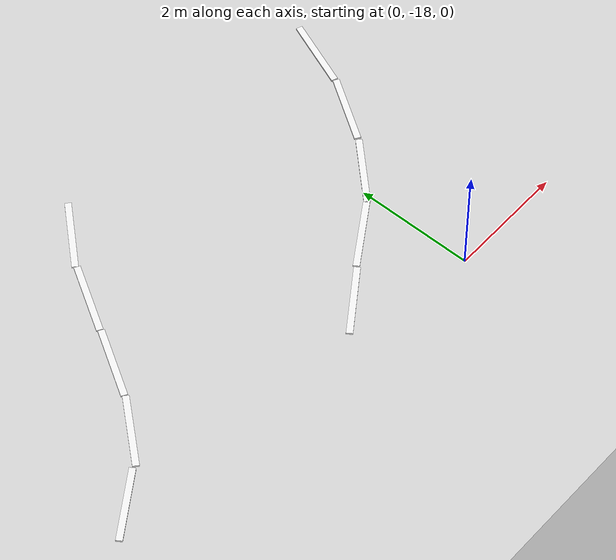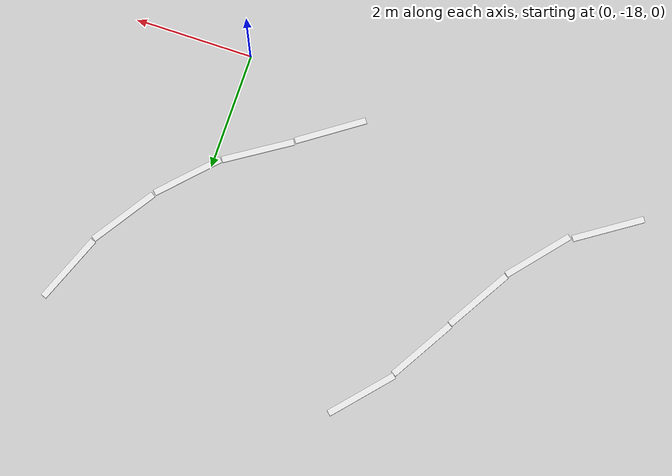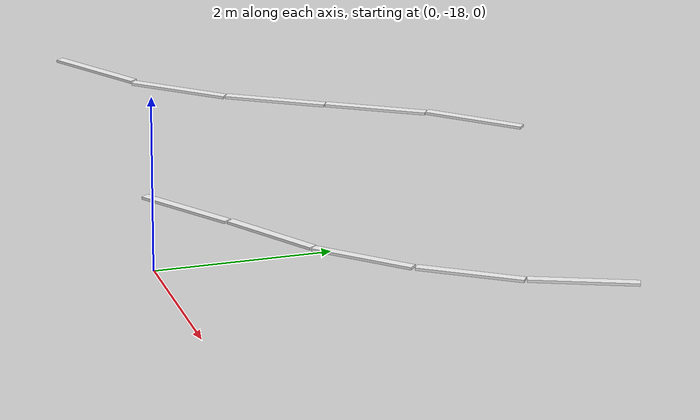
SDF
<sdf version="1.7">
 <world name="default">
  <model name="ground_plane">
   <static>1</static>
   <link name="link">
    <collision name="collision">
     <geometry><plane><normal>0 0 1</normal><size>100 100</size></plane></geometry>
     <surface><friction><ode><mu>100</mu><mu2>50</mu2></ode></friction></surface>
    </collision>
    <visual name="visual">
     <cast_shadows>0</cast_shadows>
     <geometry><plane><normal>0 0 1</normal><size>100 100</size></plane></geometry>
     <material>
      <script><uri>file://media/materials/scripts/gazebo.material</uri><name>Gazebo/Grey</name></script>
     </material>
    </visual>
   </link>
  </model>
  <model name="road_way_1_clone_clone_clone_0_clone_0_clone_clone_1_clone_0">
   <link name="link">
    <inertial>
     <mass>1</mass>
     <inertia>
      <ixx>0.166667</ixx>
      <ixy>0</ixy>
      <ixz>0</ixz>
      <iyy>0.166667</iyy>
      <iyz>0</iyz>
      <izz>0.166667</izz>
     </inertia>
    </inertial>
    <visual name="visual">
     <geometry><box><size>0.106644 1.22348 0.03129</size></box></geometry>
     <material>
      <script><name>Gazebo/White</name><uri>file://media/materials/scripts/gazebo.material</uri></script>
      <shader type="pixel"><normal_map>__default__</normal_map></shader>
      <ambient>1 1 1 1</ambient>
      <diffuse>1 1 1 1</diffuse>
      <specular>0 0 0 1</specular>
      <emissive>0 0 0 1</emissive>
     </material>
    </visual>
    <collision name="collision">
     <geometry><box><size>0.10644 1.22348 0.03129</size></box></geometry>
     <surface>
      <friction>
       <ode><mu>1</mu><mu2>1</mu2><fdir1>0 0 0</fdir1><slip1>0</slip1><slip2>0</slip2></ode>
       <torsional>
        <coefficient>1</coefficient>
        <patch_radius>0</patch_radius>
        <surface_radius>0</surface_radius>
        <use_patch_radius>1</use_patch_radius>
        <ode><slip>0</slip></ode>
       </torsional>
      </friction>
      <bounce><restitution_coefficient>0</restitution_coefficient><threshold>1e+06</threshold></bounce>
      <contact>
       <collide_without_contact>0</collide_without_contact>
       <collide_without_contact_bitmask>1</collide_without_contact_bitmask>
       <collide_bitmask>1</collide_bitmask>
       <ode>
        <soft_cfm>0</soft_cfm>
        <soft_erp>0.2</soft_erp>
        <kp>1e+13</kp>
        <kd>1</kd>
        <max_vel>0.01</max_vel>
        <min_depth>0</min_depth>
       </ode>
       <bullet>
        <split_impulse>1</split_impulse>
        <split_impulse_penetration_threshold>-0.01</split_impulse_penetration_threshold>
        <soft_cfm>0</soft_cfm>
        <soft_erp>0.2</soft_erp>
        <kp>1e+13</kp>
        <kd>1</kd>
       </bullet>
      </contact>
     </surface>
    </collision>
   </link>
   <static>0</static>
   <pose>-6.50897 -17.0589 0.015638 -1.1e-05 0 2.16002</pose>
  </model>
  <model name="road_way_1_clone_clone_clone_0_clone_0_clone_clone_1_clone_clone_1">
   <link name="link">
    <inertial>
     <mass>1</mass>
     <inertia>
      <ixx>0.166667</ixx>
      <ixy>0</ixy>
      <ixz>0</ixz>
      <iyy>0.166667</iyy>
      <iyz>0</iyz>
      <izz>0.166667</izz>
     </inertia>
    </inertial>
    <visual name="visual">
     <geometry><box><size>0.106644 1.22348 0.03129</size></box></geometry>
     <material>
      <script><name>Gazebo/White</name><uri>file://media/materials/scripts/gazebo.material</uri></script>
      <shader type="pixel"><normal_map>__default__</normal_map></shader>
      <ambient>1 1 1 1</ambient>
      <diffuse>1 1 1 1</diffuse>
      <specular>0 0 0 1</specular>
      <emissive>0 0 0 1</emissive>
     </material>
    </visual>
    <collision name="collision">
     <geometry><box><size>0.10644 1.22348 0.03129</size></box></geometry>
     <surface>
      <friction>
       <ode><mu>1</mu><mu2>1</mu2><fdir1>0 0 0</fdir1><slip1>0</slip1><slip2>0</slip2></ode>
       <torsional>
        <coefficient>1</coefficient>
        <patch_radius>0</patch_radius>
        <surface_radius>0</surface_radius>
        <use_patch_radius>1</use_patch_radius>
        <ode><slip>0</slip></ode>
       </torsional>
      </friction>
      <bounce><restitution_coefficient>0</restitution_coefficient><threshold>1e+06</threshold></bounce>
      <contact>
       <collide_without_contact>0</collide_without_contact>
       <collide_without_contact_bitmask>1</collide_without_contact_bitmask>
       <collide_bitmask>1</collide_bitmask>
       <ode>
        <soft_cfm>0</soft_cfm>
        <soft_erp>0.2</soft_erp>
        <kp>1e+13</kp>
        <kd>1</kd>
        <max_vel>0.01</max_vel>
        <min_depth>0</min_depth>
       </ode>
       <bullet>
        <split_impulse>1</split_impulse>
        <split_impulse_penetration_threshold>-0.01</split_impulse_penetration_threshold>
        <soft_cfm>0</soft_cfm>
        <soft_erp>0.2</soft_erp>
        <kp>1e+13</kp>
        <kd>1</kd>
       </bullet>
      </contact>
     </surface>
    </collision>
   </link>
   <static>0</static>
   <pose>-5.5512 -16.2661 0.015638 1.1e-05 0 2.4409</pose>
  </model>
  <model name="road_way_1_clone_clone_clone_0_clone_0_clone_clone_1_clone_clone_0_clone_0">
   <link name="link">
    <inertial>
     <mass>1</mass>
     <inertia>
      <ixx>0.166667</ixx>
      <ixy>0</ixy>
      <ixz>0</ixz>
      <iyy>0.166667</iyy>
      <iyz>0</iyz>
      <izz>0.166667</izz>
     </inertia>
    </inertial>
    <visual name="visual">
     <geometry><box><size>0.106644 1.22348 0.03129</size></box></geometry>
     <material>
      <script><name>Gazebo/White</name><uri>file://media/materials/scripts/gazebo.material</uri></script>
      <shader type="pixel"><normal_map>__default__</normal_map></shader>
      <ambient>1 1 1 1</ambient>
      <diffuse>1 1 1 1</diffuse>
      <specular>0 0 0 1</specular>
      <emissive>0 0 0 1</emissive>
     </material>
    </visual>
    <collision name="collision">
     <geometry><box><size>0.10644 1.22348 0.03129</size></box></geometry>
     <surface>
      <friction>
       <ode><mu>1</mu><mu2>1</mu2><fdir1>0 0 0</fdir1><slip1>0</slip1><slip2>0</slip2></ode>
       <torsional>
        <coefficient>1</coefficient>
        <patch_radius>0</patch_radius>
        <surface_radius>0</surface_radius>
        <use_patch_radius>1</use_patch_radius>
        <ode><slip>0</slip></ode>
       </torsional>
      </friction>
      <bounce><restitution_coefficient>0</restitution_coefficient><threshold>1e+06</threshold></bounce>
      <contact>
       <collide_without_contact>0</collide_without_contact>
       <collide_without_contact_bitmask>1</collide_without_contact_bitmask>
       <collide_bitmask>1</collide_bitmask>
       <ode>
        <soft_cfm>0</soft_cfm>
        <soft_erp>0.2</soft_erp>
        <kp>1e+13</kp>
        <kd>1</kd>
        <max_vel>0.01</max_vel>
        <min_depth>0</min_depth>
       </ode>
       <bullet>
        <split_impulse>1</split_impulse>
        <split_impulse_penetration_threshold>-0.01</split_impulse_penetration_threshold>
        <soft_cfm>0</soft_cfm>
        <soft_erp>0.2</soft_erp>
        <kp>1e+13</kp>
        <kd>1</kd>
       </bullet>
      </contact>
     </surface>
    </collision>
   </link>
   <static>0</static>
   <pose>-4.85196 -15.2535 0.015638 -1.1e-05 -0 2.60635</pose>
  </model>
  <model name="road_way_1_clone_clone_clone_0_clone_0_clone_clone_1_clone_clone_0_clone_1">
   <link name="link">
    <inertial>
     <mass>1</mass>
     <inertia>
      <ixx>0.166667</ixx>
      <ixy>0</ixy>
      <ixz>0</ixz>
      <iyy>0.166667</iyy>
      <iyz>0</iyz>
      <izz>0.166667</izz>
     </inertia>
    </inertial>
    <visual name="visual">
     <geometry><box><size>0.106644 1.22348 0.03129</size></box></geometry>
     <material>
      <script><name>Gazebo/White</name><uri>file://media/materials/scripts/gazebo.material</uri></script>
      <shader type="pixel"><normal_map>__default__</normal_map></shader>
      <ambient>1 1 1 1</ambient>
      <diffuse>1 1 1 1</diffuse>
      <specular>0 0 0 1</specular>
      <emissive>0 0 0 1</emissive>
     </material>
    </visual>
    <collision name="collision">
     <geometry><box><size>0.10644 1.22348 0.03129</size></box></geometry>
     <surface>
      <friction>
       <ode><mu>1</mu><mu2>1</mu2><fdir1>0 0 0</fdir1><slip1>0</slip1><slip2>0</slip2></ode>
       <torsional>
        <coefficient>1</coefficient>
        <patch_radius>0</patch_radius>
        <surface_radius>0</surface_radius>
        <use_patch_radius>1</use_patch_radius>
        <ode><slip>0</slip></ode>
       </torsional>
      </friction>
      <bounce><restitution_coefficient>0</restitution_coefficient><threshold>1e+06</threshold></bounce>
      <contact>
       <collide_without_contact>0</collide_without_contact>
       <collide_without_contact_bitmask>1</collide_without_contact_bitmask>
       <collide_bitmask>1</collide_bitmask>
       <ode>
        <soft_cfm>0</soft_cfm>
        <soft_erp>0.2</soft_erp>
        <kp>1e+13</kp>
        <kd>1</kd>
        <max_vel>0.01</max_vel>
        <min_depth>0</min_depth>
       </ode>
       <bullet>
        <split_impulse>1</split_impulse>
        <split_impulse_penetration_threshold>-0.01</split_impulse_penetration_threshold>
        <soft_cfm>0</soft_cfm>
        <soft_erp>0.2</soft_erp>
        <kp>1e+13</kp>
        <kd>1</kd>
       </bullet>
      </contact>
     </surface>
    </collision>
   </link>
   <static>0</static>
   <pose>-1.66681 -17.2022 0.015638 -1.1e-05 -0 2.1785</pose>
  </model>
  <model name="road_way_1_clone_clone_clone_0_clone_0_clone_clone_1_clone_clone_0_clone_1_clone">
   <link name="link">
    <inertial>
     <mass>1</mass>
     <inertia>
      <ixx>0.166667</ixx>
      <ixy>0</ixy>
      <ixz>0</ixz>
      <iyy>0.166667</iyy>
      <iyz>0</iyz>
      <izz>0.166667</izz>
     </inertia>
    </inertial>
    <visual name="visual">
     <geometry><box><size>0.106644 1.22348 0.03129</size></box></geometry>
     <material>
      <script><name>Gazebo/White</name><uri>file://media/materials/scripts/gazebo.material</uri></script>
      <shader type="pixel"><normal_map>__default__</normal_map></shader>
      <ambient>1 1 1 1</ambient>
      <diffuse>1 1 1 1</diffuse>
      <specular>0 0 0 1</specular>
      <emissive>0 0 0 1</emissive>
     </material>
    </visual>
    <collision name="collision">
     <geometry><box><size>0.10644 1.22348 0.03129</size></box></geometry>
     <surface>
      <friction>
       <ode><mu>1</mu><mu2>1</mu2><fdir1>0 0 0</fdir1><slip1>0</slip1><slip2>0</slip2></ode>
       <torsional>
        <coefficient>1</coefficient>
        <patch_radius>0</patch_radius>
        <surface_radius>0</surface_radius>
        <use_patch_radius>1</use_patch_radius>
        <ode><slip>0</slip></ode>
       </torsional>
      </friction>
      <bounce><restitution_coefficient>0</restitution_coefficient><threshold>1e+06</threshold></bounce>
      <contact>
       <collide_without_contact>0</collide_without_contact>
       <collide_without_contact_bitmask>1</collide_without_contact_bitmask>
       <collide_bitmask>1</collide_bitmask>
       <ode>
        <soft_cfm>0</soft_cfm>
        <soft_erp>0.2</soft_erp>
        <kp>1e+13</kp>
        <kd>1</kd>
        <max_vel>0.01</max_vel>
        <min_depth>0</min_depth>
       </ode>
       <bullet>
        <split_impulse>1</split_impulse>
        <split_impulse_penetration_threshold>-0.01</split_impulse_penetration_threshold>
        <soft_cfm>0</soft_cfm>
        <soft_erp>0.2</soft_erp>
        <kp>1e+13</kp>
        <kd>1</kd>
       </bullet>
      </contact>
     </surface>
    </collision>
   </link>
   <static>0</static>
   <pose>-0.641752 -16.4962 0.015638 -1.1e-05 -0 2.14334</pose>
  </model>
  <model name="road_way_1_clone_clone_clone_0_clone_0_clone_clone_1_clone_clone_0_clone_0_clone">
   <link name="link">
    <inertial>
     <mass>1</mass>
     <inertia>
      <ixx>0.166667</ixx>
      <ixy>0</ixy>
      <ixz>0</ixz>
      <iyy>0.166667</iyy>
      <iyz>0</iyz>
      <izz>0.166667</izz>
     </inertia>
    </inertial>
    <visual name="visual">
     <geometry><box><size>0.106644 1.22348 0.03129</size></box></geometry>
     <material>
      <script><name>Gazebo/White</name><uri>file://media/materials/scripts/gazebo.material</uri></script>
      <shader type="pixel"><normal_map>__default__</normal_map></shader>
      <ambient>1 1 1 1</ambient>
      <diffuse>1 1 1 1</diffuse>
      <specular>0 0 0 1</specular>
      <emissive>0 0 0 1</emissive>
     </material>
    </visual>
    <collision name="collision">
     <geometry><box><size>0.10644 1.22348 0.03129</size></box></geometry>
     <surface>
      <friction>
       <ode><mu>1</mu><mu2>1</mu2><fdir1>0 0 0</fdir1><slip1>0</slip1><slip2>0</slip2></ode>
       <torsional>
        <coefficient>1</coefficient>
        <patch_radius>0</patch_radius>
        <surface_radius>0</surface_radius>
        <use_patch_radius>1</use_patch_radius>
        <ode><slip>0</slip></ode>
       </torsional>
      </friction>
      <bounce><restitution_coefficient>0</restitution_coefficient><threshold>1e+06</threshold></bounce>
      <contact>
       <collide_without_contact>0</collide_without_contact>
       <collide_without_contact_bitmask>1</collide_without_contact_bitmask>
       <collide_bitmask>1</collide_bitmask>
       <ode>
        <soft_cfm>0</soft_cfm>
        <soft_erp>0.2</soft_erp>
        <kp>1e+13</kp>
        <kd>1</kd>
        <max_vel>0.01</max_vel>
        <min_depth>0</min_depth>
       </ode>
       <bullet>
        <split_impulse>1</split_impulse>
        <split_impulse_penetration_threshold>-0.01</split_impulse_penetration_threshold>
        <soft_cfm>0</soft_cfm>
        <soft_erp>0.2</soft_erp>
        <kp>1e+13</kp>
        <kd>1</kd>
       </bullet>
      </contact>
     </surface>
    </collision>
   </link>
   <static>0</static>
   <pose>-4.23828 -14.183 0.015638 -1.1e-05 -0 2.60964</pose>
  </model>
  <model name="road_way_1_clone_clone_clone_0_clone_0_clone_clone_1_clone_clone_0_clone_0_clone_0">
   <link name="link">
    <inertial>
     <mass>1</mass>
     <inertia>
      <ixx>0.166667</ixx>
      <ixy>0</ixy>
      <ixz>0</ixz>
      <iyy>0.166667</iyy>
      <iyz>0</iyz>
      <izz>0.166667</izz>
     </inertia>
    </inertial>
    <visual name="visual">
     <geometry><box><size>0.106644 1.22348 0.03129</size></box></geometry>
     <material>
      <script><name>Gazebo/White</name><uri>file://media/materials/scripts/gazebo.material</uri></script>
      <shader type="pixel"><normal_map>__default__</normal_map></shader>
      <ambient>1 1 1 1</ambient>
      <diffuse>1 1 1 1</diffuse>
      <specular>0 0 0 1</specular>
      <emissive>0 0 0 1</emissive>
     </material>
    </visual>
    <collision name="collision">
     <geometry><box><size>0.10644 1.22348 0.03129</size></box></geometry>
     <surface>
      <friction>
       <ode><mu>1</mu><mu2>1</mu2><fdir1>0 0 0</fdir1><slip1>0</slip1><slip2>0</slip2></ode>
       <torsional>
        <coefficient>1</coefficient>
        <patch_radius>0</patch_radius>
        <surface_radius>0</surface_radius>
        <use_patch_radius>1</use_patch_radius>
        <ode><slip>0</slip></ode>
       </torsional>
      </friction>
      <bounce><restitution_coefficient>0</restitution_coefficient><threshold>1e+06</threshold></bounce>
      <contact>
       <collide_without_contact>0</collide_without_contact>
       <collide_without_contact_bitmask>1</collide_without_contact_bitmask>
       <collide_bitmask>1</collide_bitmask>
       <ode>
        <soft_cfm>0</soft_cfm>
        <soft_erp>0.2</soft_erp>
        <kp>1e+13</kp>
        <kd>1</kd>
        <max_vel>0.01</max_vel>
        <min_depth>0</min_depth>
       </ode>
       <bullet>
        <split_impulse>1</split_impulse>
        <split_impulse_penetration_threshold>-0.01</split_impulse_penetration_threshold>
        <soft_cfm>0</soft_cfm>
        <soft_erp>0.2</soft_erp>
        <kp>1e+13</kp>
        <kd>1</kd>
       </bullet>
      </contact>
     </surface>
    </collision>
   </link>
   <static>0</static>
   <pose>-3.54293 -13.1737 0.015638 1.1e-05 -0 2.4194</pose>
  </model>
  <model name="road_way_1_clone_clone_clone_0_clone_0_clone_clone_1_clone_clone_0_clone_1_clone_clone">
   <link name="link">
    <inertial>
     <mass>1</mass>
     <inertia>
      <ixx>0.166667</ixx>
      <ixy>0</ixy>
      <ixz>0</ixz>
      <iyy>0.166667</iyy>
      <iyz>0</iyz>
      <izz>0.166667</izz>
     </inertia>
    </inertial>
    <visual name="visual">
     <geometry><box><size>0.106644 1.22348 0.03129</size></box></geometry>
     <material>
      <script><name>Gazebo/White</name><uri>file://media/materials/scripts/gazebo.material</uri></script>
      <shader type="pixel"><normal_map>__default__</normal_map></shader>
      <ambient>1 1 1 1</ambient>
      <diffuse>1 1 1 1</diffuse>
      <specular>0 0 0 1</specular>
      <emissive>0 0 0 1</emissive>
     </material>
    </visual>
    <collision name="collision">
     <geometry><box><size>0.10644 1.22348 0.03129</size></box></geometry>
     <surface>
      <friction>
       <ode><mu>1</mu><mu2>1</mu2><fdir1>0 0 0</fdir1><slip1>0</slip1><slip2>0</slip2></ode>
       <torsional>
        <coefficient>1</coefficient>
        <patch_radius>0</patch_radius>
        <surface_radius>0</surface_radius>
        <use_patch_radius>1</use_patch_radius>
        <ode><slip>0</slip></ode>
       </torsional>
      </friction>
      <bounce><restitution_coefficient>0</restitution_coefficient><threshold>1e+06</threshold></bounce>
      <contact>
       <collide_without_contact>0</collide_without_contact>
       <collide_without_contact_bitmask>1</collide_without_contact_bitmask>
       <collide_bitmask>1</collide_bitmask>
       <ode>
        <soft_cfm>0</soft_cfm>
        <soft_erp>0.2</soft_erp>
        <kp>1e+13</kp>
        <kd>1</kd>
        <max_vel>0.01</max_vel>
        <min_depth>0</min_depth>
       </ode>
       <bullet>
        <split_impulse>1</split_impulse>
        <split_impulse_penetration_threshold>-0.01</split_impulse_penetration_threshold>
        <soft_cfm>0</soft_cfm>
        <soft_erp>0.2</soft_erp>
        <kp>1e+13</kp>
        <kd>1</kd>
       </bullet>
      </contact>
     </surface>
    </collision>
   </link>
   <static>0</static>
   <pose>0.313999 -15.7229 0.015638 -1.1e-05 0 2.37757</pose>
  </model>
  <model name="road_way_1_clone_clone_clone_0_clone_0_clone_clone_1_clone_clone_0_clone_1_clone_clone_clone">
   <link name="link">
    <inertial>
     <mass>1</mass>
     <inertia>
      <ixx>0.166667</ixx>
      <ixy>0</ixy>
      <ixz>0</ixz>
      <iyy>0.166667</iyy>
      <iyz>0</iyz>
      <izz>0.166667</izz>
     </inertia>
    </inertial>
    <visual name="visual">
     <geometry><box><size>0.106644 1.22348 0.03129</size></box></geometry>
     <material>
      <script><name>Gazebo/White</name><uri>file://media/materials/scripts/gazebo.material</uri></script>
      <shader type="pixel"><normal_map>__default__</normal_map></shader>
      <ambient>1 1 1 1</ambient>
      <diffuse>1 1 1 1</diffuse>
      <specular>0 0 0 1</specular>
      <emissive>0 0 0 1</emissive>
     </material>
    </visual>
    <collision name="collision">
     <geometry><box><size>0.10644 1.22348 0.03129</size></box></geometry>
     <surface>
      <friction>
       <ode><mu>1</mu><mu2>1</mu2><fdir1>0 0 0</fdir1><slip1>0</slip1><slip2>0</slip2></ode>
       <torsional>
        <coefficient>1</coefficient>
        <patch_radius>0</patch_radius>
        <surface_radius>0</surface_radius>
        <use_patch_radius>1</use_patch_radius>
        <ode><slip>0</slip></ode>
       </torsional>
      </friction>
      <bounce><restitution_coefficient>0</restitution_coefficient><threshold>1e+06</threshold></bounce>
      <contact>
       <collide_without_contact>0</collide_without_contact>
       <collide_without_contact_bitmask>1</collide_without_contact_bitmask>
       <collide_bitmask>1</collide_bitmask>
       <ode>
        <soft_cfm>0</soft_cfm>
        <soft_erp>0.2</soft_erp>
        <kp>1e+13</kp>
        <kd>1</kd>
        <max_vel>0.01</max_vel>
        <min_depth>0</min_depth>
       </ode>
       <bullet>
        <split_impulse>1</split_impulse>
        <split_impulse_penetration_threshold>-0.01</split_impulse_penetration_threshold>
        <soft_cfm>0</soft_cfm>
        <soft_erp>0.2</soft_erp>
        <kp>1e+13</kp>
        <kd>1</kd>
       </bullet>
      </contact>
     </surface>
    </collision>
   </link>
   <static>0</static>
   <pose>1.08587 -14.7392 0.015638 -1.1e-05 -0 2.5565</pose>
  </model>
  <model name="road_way_1_clone_clone_clone_0_clone_0_clone_clone_1_clone_clone_0_clone_1_clone_clone_clone_clone">
   <link name="link">
    <inertial>
     <mass>1</mass>
     <inertia>
      <ixx>0.166667</ixx>
      <ixy>0</ixy>
      <ixz>0</ixz>
      <iyy>0.166667</iyy>
      <iyz>0</iyz>
      <izz>0.166667</izz>
     </inertia>
    </inertial>
    <visual name="visual">
     <geometry><box><size>0.106644 1.22348 0.03129</size></box></geometry>
     <material>
      <script><name>Gazebo/White</name><uri>file://media/materials/scripts/gazebo.material</uri></script>
      <shader type="pixel"><normal_map>__default__</normal_map></shader>
      <ambient>1 1 1 1</ambient>
      <diffuse>1 1 1 1</diffuse>
      <specular>0 0 0 1</specular>
      <emissive>0 0 0 1</emissive>
     </material>
    </visual>
    <collision name="collision">
     <geometry><box><size>0.10644 1.22348 0.03129</size></box></geometry>
     <surface>
      <friction>
       <ode><mu>1</mu><mu2>1</mu2><fdir1>0 0 0</fdir1><slip1>0</slip1><slip2>0</slip2></ode>
       <torsional>
        <coefficient>1</coefficient>
        <patch_radius>0</patch_radius>
        <surface_radius>0</surface_radius>
        <use_patch_radius>1</use_patch_radius>
        <ode><slip>0</slip></ode>
       </torsional>
      </friction>
      <bounce><restitution_coefficient>0</restitution_coefficient><threshold>1e+06</threshold></bounce>
      <contact>
       <collide_without_contact>0</collide_without_contact>
       <collide_without_contact_bitmask>1</collide_without_contact_bitmask>
       <collide_bitmask>1</collide_bitmask>
       <ode>
        <soft_cfm>0</soft_cfm>
        <soft_erp>0.2</soft_erp>
        <kp>1e+13</kp>
        <kd>1</kd>
        <max_vel>0.01</max_vel>
        <min_depth>0</min_depth>
       </ode>
       <bullet>
        <split_impulse>1</split_impulse>
        <split_impulse_penetration_threshold>-0.01</split_impulse_penetration_threshold>
        <soft_cfm>0</soft_cfm>
        <soft_erp>0.2</soft_erp>
        <kp>1e+13</kp>
        <kd>1</kd>
       </bullet>
      </contact>
     </surface>
    </collision>
   </link>
   <static>0</static>
   <pose>1.64265 -13.6381 0.015638 -1.1e-05 -0 2.76263</pose>
  </model>
 </world>
</sdf>
